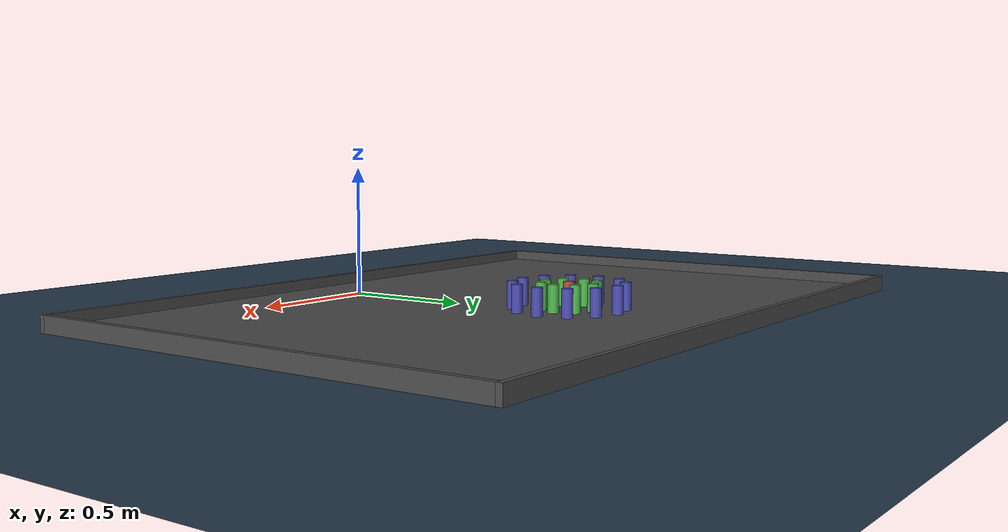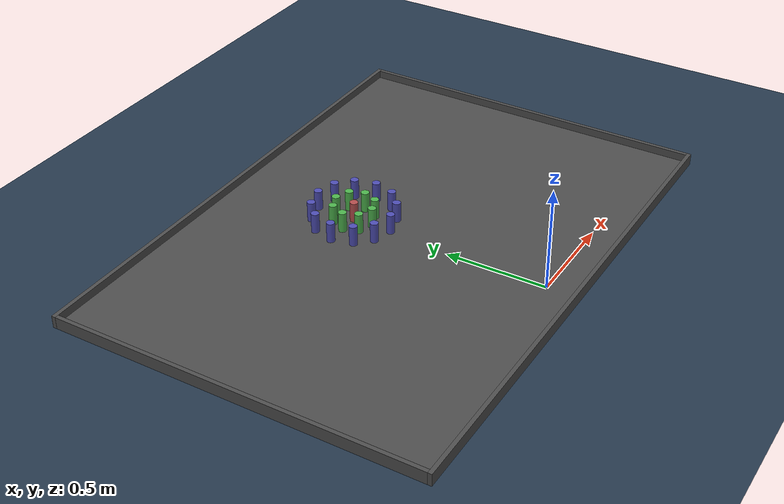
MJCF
<mujoco model="benchmark_case">
    <compiler inertiafromgeom='auto' angle='radian' eulerseq='zyx'/>
    <size njmax="5000" nconmax="1000" />
    <option timestep='0.005' iterations='50' solver='PGS' gravity='0 0 -9.81'/>

    <asset>
        <texture type="skybox" builtin="gradient" rgb1="0.3 0.5 0.7" rgb2="0 0 0" width="512" height="512"/>
        <texture name="texplane" type="2d" builtin="checker" rgb1=".2 .3 .4" rgb2=".1 0.15 0.2" width="512" height="512" mark="cross" markrgb=".8 .8 .8"/>

        <material name='MatPlane' reflectance='0.1' texture="texplane" texrepeat="1 1" texuniform="true"/>
    </asset>

    <default>
        <default class="ur10e_actuator">
            <position ctrllimited="true" ctrlrange="-3.14159 3.14159" kp="1000"></position>
        </default>
        <default class="3fGripper">
            <position ctrllimited="true" ctrlrange="-3.14159 3.14159" kp="1000"></position>
        </default>
    </default>

    <worldbody>
        <geom name="floor" pos="0 0 0" size="0 0 .25" type="plane" material="MatPlane" condim="3"/>

        <!-- Play Ground -->
        <geom type="box" pos="0 0.75 0.01" size="1.3 0.9 0.01" rgba=".3 .3 .3 1" condim="3"/>
        <geom type="box" pos="1.31 0.75 0.03" size="0.01 0.9 0.03" rgba=".3 .3 .3 1" condim="3" friction="1 1 0"/>
        <geom type="box" pos="-1.31 0.75 0.03" size="0.01 0.9 0.03" rgba=".3 .3 .3 1" condim="3" friction="1 1 0"/>
        <geom type="box" pos="0 -0.16 0.03" size="1.32 0.01 0.03" rgba=".3 .3 .3 1" condim="3" friction="1 1 0"/>
        <geom type="box" pos="0 1.66 0.03" size="1.32 0.01 0.03" rgba=".3 .3 .3 1" condim="3" friction="1 1 0"/>

        <!-- Objekte -->
        <body name="cylinder_1" pos="0 1 0.07">
            <geom type="cylinder" size="0.02 0.05" rgba=".7 .3 .3 1"/>
        </body>

        <body name="cylinder_2_1" pos="0 1.1 0.07">
            <geom type="cylinder" size="0.02 0.05" rgba=".3 .7 .3 1"/>
        </body>

        <body name="cylinder_2_2" pos="0.071 1.071 0.07">
            <geom type="cylinder" size="0.02 0.05" rgba=".3 .7 .3 1"/>
        </body>

        <body name="cylinder_2_3" pos="0.1 1 0.07">
            <geom type="cylinder" size="0.02 0.05" rgba=".3 .7 .3 1"/>
        </body>

        <body name="cylinder_2_4" pos="0.071 0.929 0.07">
            <geom type="cylinder" size="0.02 0.05" rgba=".3 .7 .3 1"/>
        </body>

        <body name="cylinder_2_5" pos="0 0.9 0.07">
            <geom type="cylinder" size="0.02 0.05" rgba=".3 .7 .3 1"/>
        </body>

        <body name="cylinder_2_6" pos="-0.071 0.929 0.07">
            <geom type="cylinder" size="0.02 0.05" rgba=".3 .7 .3 1"/>
        </body>

        <body name="cylinder_2_7" pos="-0.1 1 0.07">
            <geom type="cylinder" size="0.02 0.05" rgba=".3 .7 .3 1"/>
        </body>

        <body name="cylinder_2_8" pos="-0.071 1.071 0.07">
            <geom type="cylinder" size="0.02 0.05" rgba=".3 .7 .3 1"/>
        </body>

        <body name="cylinder_3_1" pos="0 1.2 0.07">
            <geom type="cylinder" size="0.02 0.05" rgba=".3 .3 .7 1"/>
        </body>

        <body name="cylinder_3_2" pos="0.1 1.173 0.07">
            <geom type="cylinder" size="0.02 0.05" rgba=".3 .3 .7 1"/>
        </body>

        <body name="cylinder_3_3" pos="0.171 1.104 0.07">
            <geom type="cylinder" size="0.02 0.05" rgba=".3 .3 .7 1"/>
        </body>

        <body name="cylinder_3_4" pos="0.2 1 0.07">
            <geom type="cylinder" size="0.02 0.05" rgba=".3 .3 .7 1"/>
        </body>

        <body name="cylinder_3_5" pos="0.171 0.896 0.07">
            <geom type="cylinder" size="0.02 0.05" rgba=".3 .3 .7 1"/>
        </body>

        <body name="cylinder_3_6" pos="0.1 0.827 0.07">
            <geom type="cylinder" size="0.02 0.05" rgba=".3 .3 .7 1"/>
        </body>

        <body name="cylinder_3_7" pos="0 0.8 0.07">
            <geom type="cylinder" size="0.02 0.05" rgba=".3 .3 .7 1"/>
        </body>

        <body name="cylinder_3_8" pos="-0.1 0.827 0.07">
            <geom type="cylinder" size="0.02 0.05" rgba=".3 .3 .7 1"/>
        </body>

        <body name="cylinder_3_9" pos="-0.171 0.896 0.07">
            <geom type="cylinder" size="0.02 0.05" rgba=".3 .3 .7 1"/>
        </body>

        <body name="cylinder_3_10" pos="-0.2 1 0.07">
            <geom type="cylinder" size="0.02 0.05" rgba=".3 .3 .7 1"/>
        </body>

        <body name="cylinder_3_11" pos="-0.171 1.104 0.07">
            <geom type="cylinder" size="0.02 0.05" rgba=".3 .3 .7 1"/>
        </body>

        <body name="cylinder_3_12" pos="-0.1 1.173 0.07">
            <geom type="cylinder" size="0.02 0.05" rgba=".3 .3 .7 1"/>
        </body>

    </worldbody>

    <actuator>
        <position class="ur10e_actuator" joint="axis1" name="base_link_act"></position>
        <position class="ur10e_actuator" joint="axis2" name="shoulder_link_act" ctrlrange="-1.54 1.54"></position>
        <position class="ur10e_actuator" joint="axis3" name="elbow_link_act"></position>
        <position class="ur10e_actuator" joint="axis4" name="wrist_1_link_act"></position>
        <position class="ur10e_actuator" joint="axis5" name="wrist_2_link_act"></position>
        <position class="ur10e_actuator" joint="axis6" name="wrist_3_link_act"></position>

        <position class="3fGripper" joint="gripperpalm_finger_1_joint" name="gripperpalm_finger_1_act" ctrlrange="-0.2967 0.2967"></position>
        <position class="3fGripper" joint="gripperfinger_1_joint_1" name="gripperfinger_1_joint_1_act" ctrlrange="0 1.2217"></position>
        <position class="3fGripper" joint="gripperfinger_1_joint_2" name="gripperfinger_1_joint_2_act" ctrlrange="0 1.5708"></position>
        <position class="3fGripper" joint="gripperfinger_1_joint_3" name="gripperfinger_1_joint_3_act" ctrlrange="-0.6632 1.0471"></position>
        <position class="3fGripper" joint="gripperpalm_finger_2_joint" name="gripperpalm_finger_2_act" ctrlrange="-0.2967 0.2967"></position>
        <position class="3fGripper" joint="gripperfinger_2_joint_1" name="gripperfinger_2_joint_1_act" ctrlrange="0 1.2217"></position>
        <position class="3fGripper" joint="gripperfinger_2_joint_2" name="gripperfinger_2_joint_2_act" ctrlrange="0 1.5708"></position>
        <position class="3fGripper" joint="gripperfinger_2_joint_3" name="gripperfinger_2_joint_3_act" ctrlrange="-0.6632 1.0471"></position>
        <position class="3fGripper" joint="gripperfinger_middle_joint_1" name="gripperfinger_middle_joint_1_act" ctrlrange="0 1.2217"></position>
        <position class="3fGripper" joint="gripperfinger_middle_joint_2" name="gripperfinger_middle_joint_2_act" ctrlrange="0 1.5708"></position>
        <position class="3fGripper" joint="gripperfinger_middle_joint_3" name="gripperfinger_middle_joint_3_act" ctrlrange="-0.6632 1.0471"></position>
    </actuator>

</mujoco>
